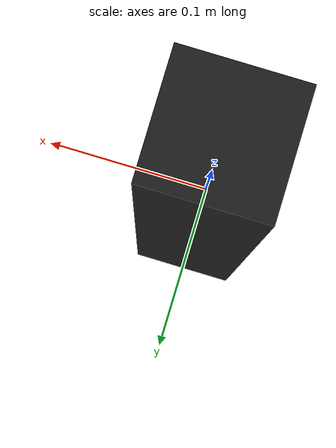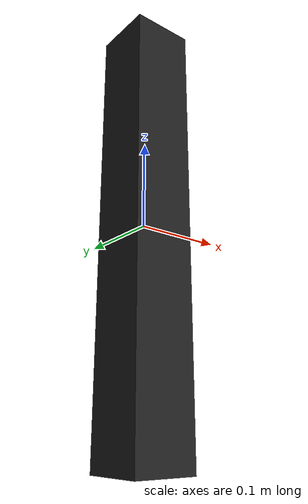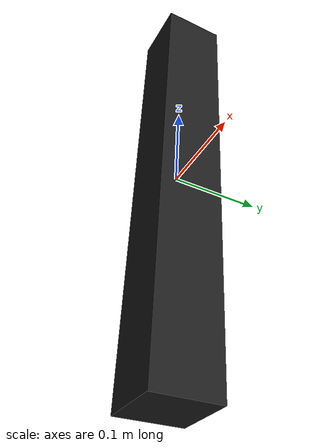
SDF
<?xml version="1.0" ?>
<sdf version="1.6">
  <model name="regolo7">
    <static>false</static>
    <link name="link">
      <collision name="collision">
        <geometry>
          <mesh>
            <uri>model://regolo7/meshes/regolo7.stl</uri>
            <scale>0.07 0.07 0.07</scale>
          </mesh>
        </geometry>
      </collision>
      <visual name="visual">
        <geometry>
          <mesh>
            <uri>model://regolo7/meshes/regolo7.stl</uri>
            <scale>0.07 0.07 0.07</scale>
          </mesh>
        </geometry>
        <material>
          <script>
            <uri>file://media/materials/scripts/gazebo.material</uri>
            <name>Gazebo/Black</name> <!-- Change this to the desired color -->
          </script>
        </material>
      </visual>
      <inertial>
        <mass>5.0</mass>
        <inertia>
          <ixx>1</ixx>
          <ixy>0.0</ixy>
          <ixz>0.0</ixz>
          <iyy>1</iyy>
          <iyz>0.0</iyz>
          <izz>1</izz>
        </inertia>
      </inertial>
    </link>
  </model>
</sdf>
